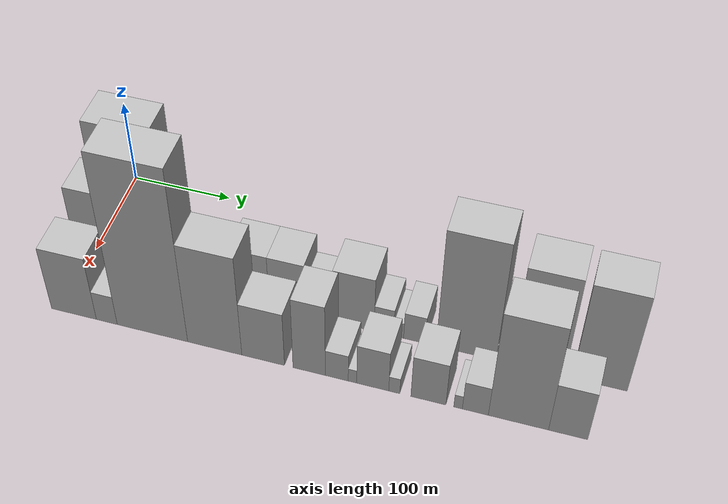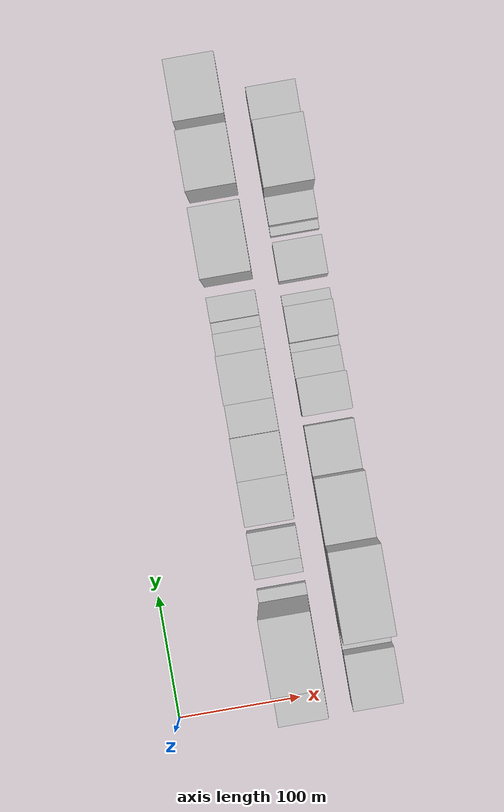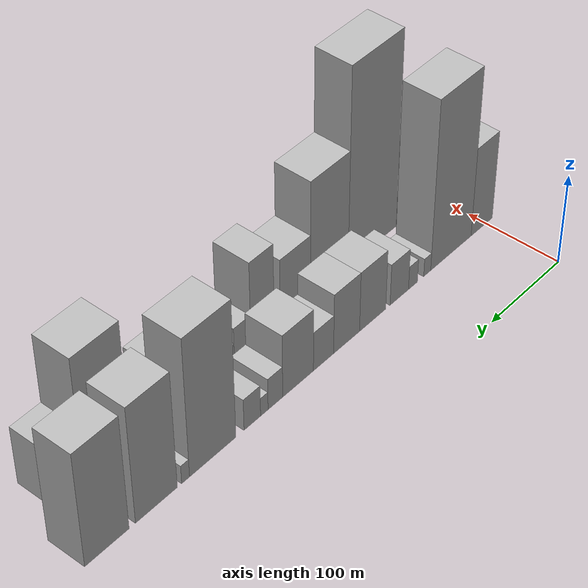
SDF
<sdf version="1.6">
 <world name="default">
  <model name="building_16">
   <static>1</static>
   <pose>100.0000 6.4995 0 0.000000 0.000000 0.000000</pose>
   <link name="link">
    <pose>0 0 51.00 0 0 0</pose>
    <collision name="collision"><geometry><box><size>40.0000 32.3741 102.0000</size></box></geometry></collision>
    <visual name="visual">
     <cast_shadows>0</cast_shadows>
     <geometry><box><size>40.0000 32.3741 102.0000</size></box></geometry>
     <material>
      <script>
       <uri>model://HANNAS_wall/materials/scripts</uri>
       <uri>model://HANNAS_wall/materials/textures</uri>
       <name>vrc/HANNAS_wall</name>
      </script>
     </material>
    </visual>
   </link>
  </model>
  <model name="building_17">
   <static>1</static>
   <pose>100.0000 52.6617 0 0.000000 0.000000 0.000000</pose>
   <link name="link">
    <pose>0 0 96.00 0 0 0</pose>
    <collision name="collision"><geometry><box><size>40.0000 59.9502 192.0000</size></box></geometry></collision>
    <visual name="visual">
     <cast_shadows>0</cast_shadows>
     <geometry><box><size>40.0000 59.9502 192.0000</size></box></geometry>
     <material>
      <script>
       <uri>model://HANNAS_wall/materials/scripts</uri>
       <uri>model://HANNAS_wall/materials/textures</uri>
       <name>vrc/HANNAS_wall</name>
      </script>
     </material>
    </visual>
   </link>
  </model>
  <model name="building_18">
   <static>1</static>
   <pose>100.0000 87.7302 0 0.000000 0.000000 0.000000</pose>
   <link name="link">
    <pose>0 0 10.50 0 0 0</pose>
    <collision name="collision"><geometry><box><size>40.0000 10.1868 21.0000</size></box></geometry></collision>
    <visual name="visual">
     <cast_shadows>0</cast_shadows>
     <geometry><box><size>40.0000 10.1868 21.0000</size></box></geometry>
     <material>
      <script>
       <uri>model://HANNAS_wall/materials/scripts</uri>
       <uri>model://HANNAS_wall/materials/textures</uri>
       <name>vrc/HANNAS_wall</name>
      </script>
     </material>
    </visual>
   </link>
  </model>
  <model name="building_19">
   <static>1</static>
   <pose>100.0000 108.2329 0 0.000000 0.000000 0.000000</pose>
   <link name="link">
    <pose>0 0 13.50 0 0 0</pose>
    <collision name="collision"><geometry><box><size>40.0000 12.8187 27.0000</size></box></geometry></collision>
    <visual name="visual">
     <cast_shadows>0</cast_shadows>
     <geometry><box><size>40.0000 12.8187 27.0000</size></box></geometry>
     <material>
      <script>
       <uri>model://HANNAS_wall/materials/scripts</uri>
       <uri>model://HANNAS_wall/materials/textures</uri>
       <name>vrc/HANNAS_wall</name>
      </script>
     </material>
    </visual>
   </link>
  </model>
  <model name="building_20">
   <static>1</static>
   <pose>100.0000 127.6953 0 0.000000 0.000000 0.000000</pose>
   <link name="link">
    <pose>0 0 24.00 0 0 0</pose>
    <collision name="collision"><geometry><box><size>40.0000 26.1061 48.0000</size></box></geometry></collision>
    <visual name="visual">
     <cast_shadows>0</cast_shadows>
     <geometry><box><size>40.0000 26.1061 48.0000</size></box></geometry>
     <material>
      <script>
       <uri>model://HANNAS_wall/materials/scripts</uri>
       <uri>model://HANNAS_wall/materials/textures</uri>
       <name>vrc/HANNAS_wall</name>
      </script>
     </material>
    </visual>
   </link>
  </model>
  <model name="building_21">
   <static>1</static>
   <pose>100.0000 164.8276 0 0.000000 0.000000 0.000000</pose>
   <link name="link">
    <pose>0 0 34.50 0 0 0</pose>
    <collision name="collision"><geometry><box><size>40.0000 36.1584 69.0000</size></box></geometry></collision>
    <visual name="visual">
     <cast_shadows>0</cast_shadows>
     <geometry><box><size>40.0000 36.1584 69.0000</size></box></geometry>
     <material>
      <script>
       <uri>model://HANNAS_wall/materials/scripts</uri>
       <uri>model://HANNAS_wall/materials/textures</uri>
       <name>vrc/HANNAS_wall</name>
      </script>
     </material>
    </visual>
   </link>
  </model>
  <model name="building_22">
   <static>1</static>
   <pose>100.0000 200.3634 0 0.000000 0.000000 0.000000</pose>
   <link name="link">
    <pose>0 0 34.50 0 0 0</pose>
    <collision name="collision"><geometry><box><size>40.0000 34.9132 69.0000</size></box></geometry></collision>
    <visual name="visual">
     <cast_shadows>0</cast_shadows>
     <geometry><box><size>40.0000 34.9132 69.0000</size></box></geometry>
     <material>
      <script>
       <uri>model://HANNAS_wall/materials/scripts</uri>
       <uri>model://HANNAS_wall/materials/textures</uri>
       <name>vrc/HANNAS_wall</name>
      </script>
     </material>
    </visual>
   </link>
  </model>
  <model name="building_23">
   <static>1</static>
   <pose>100.0000 231.1238 0 0.000000 0.000000 0.000000</pose>
   <link name="link">
    <pose>0 0 22.50 0 0 0</pose>
    <collision name="collision"><geometry><box><size>40.0000 26.6077 45.0000</size></box></geometry></collision>
    <visual name="visual">
     <cast_shadows>0</cast_shadows>
     <geometry><box><size>40.0000 26.6077 45.0000</size></box></geometry>
     <material>
      <script>
       <uri>model://HANNAS_wall/materials/scripts</uri>
       <uri>model://HANNAS_wall/materials/textures</uri>
       <name>vrc/HANNAS_wall</name>
      </script>
     </material>
    </visual>
   </link>
  </model>
  <model name="building_24">
   <static>1</static>
   <pose>100.0000 264.2056 0 0.000000 0.000000 0.000000</pose>
   <link name="link">
    <pose>0 0 36.00 0 0 0</pose>
    <collision name="collision"><geometry><box><size>40.0000 39.5560 72.0000</size></box></geometry></collision>
    <visual name="visual">
     <cast_shadows>0</cast_shadows>
     <geometry><box><size>40.0000 39.5560 72.0000</size></box></geometry>
     <material>
      <script>
       <uri>model://HANNAS_wall/materials/scripts</uri>
       <uri>model://HANNAS_wall/materials/textures</uri>
       <name>vrc/HANNAS_wall</name>
      </script>
     </material>
    </visual>
   </link>
  </model>
  <model name="building_25">
   <static>1</static>
   <pose>100.0000 293.2290 0 0.000000 0.000000 0.000000</pose>
   <link name="link">
    <pose>0 0 18.00 0 0 0</pose>
    <collision name="collision"><geometry><box><size>40.0000 18.4908 36.0000</size></box></geometry></collision>
    <visual name="visual">
     <cast_shadows>0</cast_shadows>
     <geometry><box><size>40.0000 18.4908 36.0000</size></box></geometry>
     <material>
      <script>
       <uri>model://HANNAS_wall/materials/scripts</uri>
       <uri>model://HANNAS_wall/materials/textures</uri>
       <name>vrc/HANNAS_wall</name>
      </script>
     </material>
    </visual>
   </link>
  </model>
  <model name="building_26">
   <static>1</static>
   <pose>100.0000 307.1522 0 0.000000 0.000000 0.000000</pose>
   <link name="link">
    <pose>0 0 10.50 0 0 0</pose>
    <collision name="collision"><geometry><box><size>40.0000 9.3556 21.0000</size></box></geometry></collision>
    <visual name="visual">
     <cast_shadows>0</cast_shadows>
     <geometry><box><size>40.0000 9.3556 21.0000</size></box></geometry>
     <material>
      <script>
       <uri>model://HANNAS_wall/materials/scripts</uri>
       <uri>model://HANNAS_wall/materials/textures</uri>
       <name>vrc/HANNAS_wall</name>
      </script>
     </material>
    </visual>
   </link>
  </model>
  <model name="building_27">
   <static>1</static>
   <pose>100.0000 322.0519 0 0.000000 0.000000 0.000000</pose>
   <link name="link">
    <pose>0 0 18.00 0 0 0</pose>
    <collision name="collision"><geometry><box><size>40.0000 20.4438 36.0000</size></box></geometry></collision>
    <visual name="visual">
     <cast_shadows>0</cast_shadows>
     <geometry><box><size>40.0000 20.4438 36.0000</size></box></geometry>
     <material>
      <script>
       <uri>model://HANNAS_wall/materials/scripts</uri>
       <uri>model://HANNAS_wall/materials/textures</uri>
       <name>vrc/HANNAS_wall</name>
      </script>
     </material>
    </visual>
   </link>
  </model>
  <model name="building_28">
   <static>1</static>
   <pose>100.0000 369.9561 0 0.000000 0.000000 0.000000</pose>
   <link name="link">
    <pose>0 0 78.00 0 0 0</pose>
    <collision name="collision"><geometry><box><size>40.0000 55.3646 156.0000</size></box></geometry></collision>
    <visual name="visual">
     <cast_shadows>0</cast_shadows>
     <geometry><box><size>40.0000 55.3646 156.0000</size></box></geometry>
     <material>
      <script>
       <uri>model://HANNAS_wall/materials/scripts</uri>
       <uri>model://HANNAS_wall/materials/textures</uri>
       <name>vrc/HANNAS_wall</name>
      </script>
     </material>
    </visual>
   </link>
  </model>
  <model name="building_29">
   <static>1</static>
   <pose>100.0000 402.2558 0 0.000000 0.000000 0.000000</pose>
   <link name="link">
    <pose>0 0 10.50 0 0 0</pose>
    <collision name="collision"><geometry><box><size>40.0000 9.2348 21.0000</size></box></geometry></collision>
    <visual name="visual">
     <cast_shadows>0</cast_shadows>
     <geometry><box><size>40.0000 9.2348 21.0000</size></box></geometry>
     <material>
      <script>
       <uri>model://HANNAS_wall/materials/scripts</uri>
       <uri>model://HANNAS_wall/materials/textures</uri>
       <name>vrc/HANNAS_wall</name>
      </script>
     </material>
    </visual>
   </link>
  </model>
  <model name="building_30">
   <static>1</static>
   <pose>100.0000 435.7212 0 0.000000 0.000000 0.000000</pose>
   <link name="link">
    <pose>0 0 66.00 0 0 0</pose>
    <collision name="collision"><geometry><box><size>40.0000 47.6961 132.0000</size></box></geometry></collision>
    <visual name="visual">
     <cast_shadows>0</cast_shadows>
     <geometry><box><size>40.0000 47.6961 132.0000</size></box></geometry>
     <material>
      <script>
       <uri>model://HANNAS_wall/materials/scripts</uri>
       <uri>model://HANNAS_wall/materials/textures</uri>
       <name>vrc/HANNAS_wall</name>
      </script>
     </material>
    </visual>
   </link>
  </model>
  <model name="building_31">
   <static>1</static>
   <pose>100.0000 490.9184 0 0.000000 0.000000 0.000000</pose>
   <link name="link">
    <pose>0 0 64.50 0 0 0</pose>
    <collision name="collision"><geometry><box><size>40.0000 48.6983 129.0000</size></box></geometry></collision>
    <visual name="visual">
     <cast_shadows>0</cast_shadows>
     <geometry><box><size>40.0000 48.6983 129.0000</size></box></geometry>
     <material>
      <script>
       <uri>model://HANNAS_wall/materials/scripts</uri>
       <uri>model://HANNAS_wall/materials/textures</uri>
       <name>vrc/HANNAS_wall</name>
      </script>
     </material>
    </visual>
   </link>
  </model>
  <model name="building_46">
   <static>1</static>
   <pose>160.0000 12.7705 0 0.000000 0.000000 0.000000</pose>
   <link name="link">
    <pose>0 0 42.00 0 0 0</pose>
    <collision name="collision"><geometry><box><size>40.0000 44.9179 84.0000</size></box></geometry></collision>
    <visual name="visual">
     <cast_shadows>0</cast_shadows>
     <geometry><box><size>40.0000 44.9179 84.0000</size></box></geometry>
     <material>
      <script>
       <uri>model://HANNAS_wall/materials/scripts</uri>
       <uri>model://HANNAS_wall/materials/textures</uri>
       <name>vrc/HANNAS_wall</name>
      </script>
     </material>
    </visual>
   </link>
  </model>
  <model name="building_47">
   <static>1</static>
   <pose>160.0000 45.6101 0 0.000000 0.000000 0.000000</pose>
   <link name="link">
    <pose>0 0 19.50 0 0 0</pose>
    <collision name="collision"><geometry><box><size>40.0000 20.7615 39.0000</size></box></geometry></collision>
    <visual name="visual">
     <cast_shadows>0</cast_shadows>
     <geometry><box><size>40.0000 20.7615 39.0000</size></box></geometry>
     <material>
      <script>
       <uri>model://HANNAS_wall/materials/scripts</uri>
       <uri>model://HANNAS_wall/materials/textures</uri>
       <name>vrc/HANNAS_wall</name>
      </script>
     </material>
    </visual>
   </link>
  </model>
  <model name="building_48">
   <static>1</static>
   <pose>160.0000 90.5186 0 0.000000 0.000000 0.000000</pose>
   <link name="link">
    <pose>0 0 111.00 0 0 0</pose>
    <collision name="collision"><geometry><box><size>40.0000 69.0555 222.0000</size></box></geometry></collision>
    <visual name="visual">
     <cast_shadows>0</cast_shadows>
     <geometry><box><size>40.0000 69.0555 222.0000</size></box></geometry>
     <material>
      <script>
       <uri>model://HANNAS_wall/materials/scripts</uri>
       <uri>model://HANNAS_wall/materials/textures</uri>
       <name>vrc/HANNAS_wall</name>
      </script>
     </material>
    </visual>
   </link>
  </model>
  <model name="building_49">
   <static>1</static>
   <pose>160.0000 151.0954 0 0.000000 0.000000 0.000000</pose>
   <link name="link">
    <pose>0 0 66.00 0 0 0</pose>
    <collision name="collision"><geometry><box><size>40.0000 52.0981 132.0000</size></box></geometry></collision>
    <visual name="visual">
     <cast_shadows>0</cast_shadows>
     <geometry><box><size>40.0000 52.0981 132.0000</size></box></geometry>
     <material>
      <script>
       <uri>model://HANNAS_wall/materials/scripts</uri>
       <uri>model://HANNAS_wall/materials/textures</uri>
       <name>vrc/HANNAS_wall</name>
      </script>
     </material>
    </visual>
   </link>
  </model>
  <model name="building_50">
   <static>1</static>
   <pose>160.0000 197.3498 0 0.000000 0.000000 0.000000</pose>
   <link name="link">
    <pose>0 0 36.00 0 0 0</pose>
    <collision name="collision"><geometry><box><size>40.0000 40.4108 72.0000</size></box></geometry></collision>
    <visual name="visual">
     <cast_shadows>0</cast_shadows>
     <geometry><box><size>40.0000 40.4108 72.0000</size></box></geometry>
     <material>
      <script>
       <uri>model://HANNAS_wall/materials/scripts</uri>
       <uri>model://HANNAS_wall/materials/textures</uri>
       <name>vrc/HANNAS_wall</name>
      </script>
     </material>
    </visual>
   </link>
  </model>
  <model name="building_51">
   <static>1</static>
   <pose>160.0000 240.6836 0 0.000000 0.000000 0.000000</pose>
   <link name="link">
    <pose>0 0 48.00 0 0 0</pose>
    <collision name="collision"><geometry><box><size>40.0000 30.2567 96.0000</size></box></geometry></collision>
    <visual name="visual">
     <cast_shadows>0</cast_shadows>
     <geometry><box><size>40.0000 30.2567 96.0000</size></box></geometry>
     <material>
      <script>
       <uri>model://HANNAS_wall/materials/scripts</uri>
       <uri>model://HANNAS_wall/materials/textures</uri>
       <name>vrc/HANNAS_wall</name>
      </script>
     </material>
    </visual>
   </link>
  </model>
  <model name="building_52">
   <static>1</static>
   <pose>160.0000 266.3919 0 0.000000 0.000000 0.000000</pose>
   <link name="link">
    <pose>0 0 18.00 0 0 0</pose>
    <collision name="collision"><geometry><box><size>40.0000 21.1600 36.0000</size></box></geometry></collision>
    <visual name="visual">
     <cast_shadows>0</cast_shadows>
     <geometry><box><size>40.0000 21.1600 36.0000</size></box></geometry>
     <material>
      <script>
       <uri>model://HANNAS_wall/materials/scripts</uri>
       <uri>model://HANNAS_wall/materials/textures</uri>
       <name>vrc/HANNAS_wall</name>
      </script>
     </material>
    </visual>
   </link>
  </model>
  <model name="building_53">
   <static>1</static>
   <pose>160.0000 280.8625 0 0.000000 0.000000 0.000000</pose>
   <link name="link">
    <pose>0 0 9.00 0 0 0</pose>
    <collision name="collision"><geometry><box><size>40.0000 7.7812 18.0000</size></box></geometry></collision>
    <visual name="visual">
     <cast_shadows>0</cast_shadows>
     <geometry><box><size>40.0000 7.7812 18.0000</size></box></geometry>
     <material>
      <script>
       <uri>model://HANNAS_wall/materials/scripts</uri>
       <uri>model://HANNAS_wall/materials/textures</uri>
       <name>vrc/HANNAS_wall</name>
      </script>
     </material>
    </visual>
   </link>
  </model>
  <model name="building_54">
   <static>1</static>
   <pose>160.0000 299.4323 0 0.000000 0.000000 0.000000</pose>
   <link name="link">
    <pose>0 0 27.00 0 0 0</pose>
    <collision name="collision"><geometry><box><size>40.0000 29.3583 54.0000</size></box></geometry></collision>
    <visual name="visual">
     <cast_shadows>0</cast_shadows>
     <geometry><box><size>40.0000 29.3583 54.0000</size></box></geometry>
     <material>
      <script>
       <uri>model://HANNAS_wall/materials/scripts</uri>
       <uri>model://HANNAS_wall/materials/textures</uri>
       <name>vrc/HANNAS_wall</name>
      </script>
     </material>
    </visual>
   </link>
  </model>
  <model name="building_55">
   <static>1</static>
   <pose>160.0000 319.1750 0 0.000000 0.000000 0.000000</pose>
   <link name="link">
    <pose>0 0 10.50 0 0 0</pose>
    <collision name="collision"><geometry><box><size>40.0000 10.1271 21.0000</size></box></geometry></collision>
    <visual name="visual">
     <cast_shadows>0</cast_shadows>
     <geometry><box><size>40.0000 10.1271 21.0000</size></box></geometry>
     <material>
      <script>
       <uri>model://HANNAS_wall/materials/scripts</uri>
       <uri>model://HANNAS_wall/materials/textures</uri>
       <name>vrc/HANNAS_wall</name>
      </script>
     </material>
    </visual>
   </link>
  </model>
  <model name="building_56">
   <static>1</static>
   <pose>160.0000 350.0350 0 0.000000 0.000000 0.000000</pose>
   <link name="link">
    <pose>0 0 28.50 0 0 0</pose>
    <collision name="collision"><geometry><box><size>40.0000 31.5930 57.0000</size></box></geometry></collision>
    <visual name="visual">
     <cast_shadows>0</cast_shadows>
     <geometry><box><size>40.0000 31.5930 57.0000</size></box></geometry>
     <material>
      <script>
       <uri>model://HANNAS_wall/materials/scripts</uri>
       <uri>model://HANNAS_wall/materials/textures</uri>
       <name>vrc/HANNAS_wall</name>
      </script>
     </material>
    </visual>
   </link>
  </model>
  <model name="building_57">
   <static>1</static>
   <pose>160.0000 376.6534 0 0.000000 0.000000 0.000000</pose>
   <link name="link">
    <pose>0 0 9.00 0 0 0</pose>
    <collision name="collision"><geometry><box><size>40.0000 7.6439 18.0000</size></box></geometry></collision>
    <visual name="visual">
     <cast_shadows>0</cast_shadows>
     <geometry><box><size>40.0000 7.6439 18.0000</size></box></geometry>
     <material>
      <script>
       <uri>model://HANNAS_wall/materials/scripts</uri>
       <uri>model://HANNAS_wall/materials/textures</uri>
       <name>vrc/HANNAS_wall</name>
      </script>
     </material>
    </visual>
   </link>
  </model>
  <model name="building_58">
   <static>1</static>
   <pose>160.0000 392.0320 0 0.000000 0.000000 0.000000</pose>
   <link name="link">
    <pose>0 0 19.50 0 0 0</pose>
    <collision name="collision"><geometry><box><size>40.0000 23.1134 39.0000</size></box></geometry></collision>
    <visual name="visual">
     <cast_shadows>0</cast_shadows>
     <geometry><box><size>40.0000 23.1134 39.0000</size></box></geometry>
     <material>
      <script>
       <uri>model://HANNAS_wall/materials/scripts</uri>
       <uri>model://HANNAS_wall/materials/textures</uri>
       <name>vrc/HANNAS_wall</name>
      </script>
     </material>
    </visual>
   </link>
  </model>
  <model name="building_59">
   <static>1</static>
   <pose>160.0000 429.9810 0 0.000000 0.000000 0.000000</pose>
   <link name="link">
    <pose>0 0 70.50 0 0 0</pose>
    <collision name="collision"><geometry><box><size>40.0000 52.7845 141.0000</size></box></geometry></collision>
    <visual name="visual">
     <cast_shadows>0</cast_shadows>
     <geometry><box><size>40.0000 52.7845 141.0000</size></box></geometry>
     <material>
      <script>
       <uri>model://HANNAS_wall/materials/scripts</uri>
       <uri>model://HANNAS_wall/materials/textures</uri>
       <name>vrc/HANNAS_wall</name>
      </script>
     </material>
    </visual>
   </link>
  </model>
  <model name="building_60">
   <static>1</static>
   <pose>160.0000 473.3453 0 0.000000 0.000000 0.000000</pose>
   <link name="link">
    <pose>0 0 33.00 0 0 0</pose>
    <collision name="collision"><geometry><box><size>40.0000 33.9442 66.0000</size></box></geometry></collision>
    <visual name="visual">
     <cast_shadows>0</cast_shadows>
     <geometry><box><size>40.0000 33.9442 66.0000</size></box></geometry>
     <material>
      <script>
       <uri>model://HANNAS_wall/materials/scripts</uri>
       <uri>model://HANNAS_wall/materials/textures</uri>
       <name>vrc/HANNAS_wall</name>
      </script>
     </material>
    </visual>
   </link>
  </model>
 </world>
</sdf>
